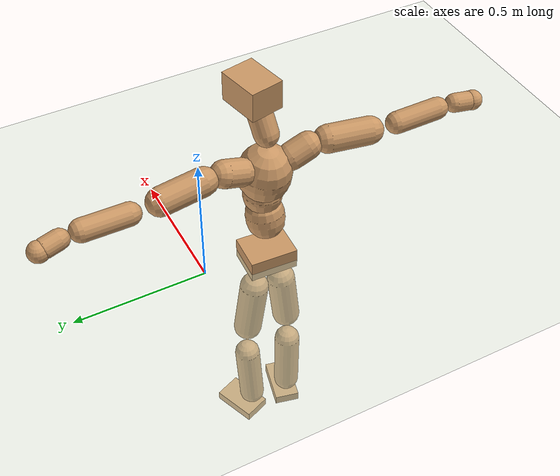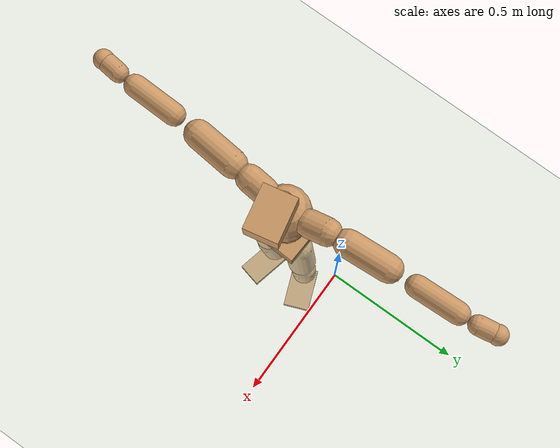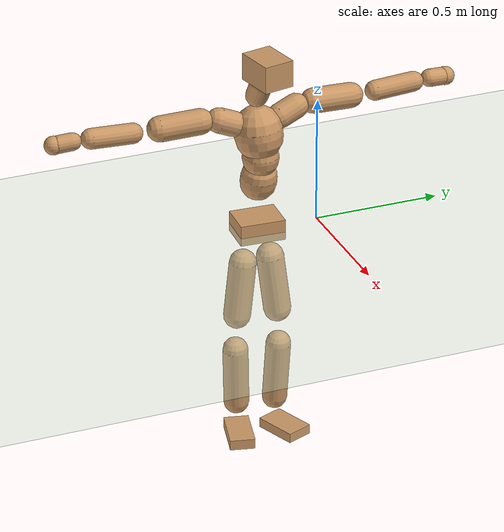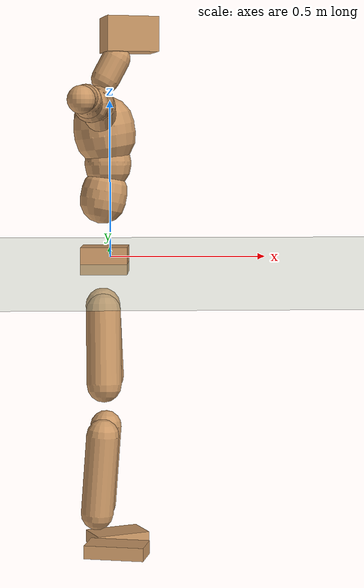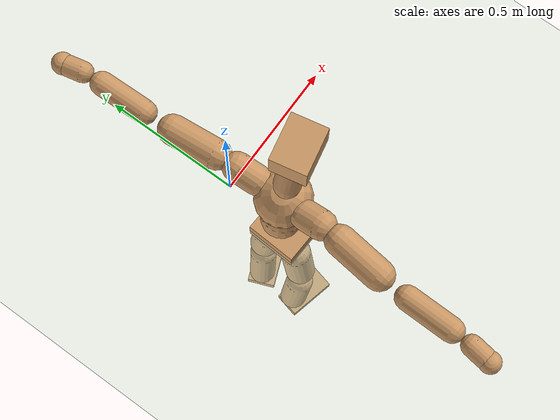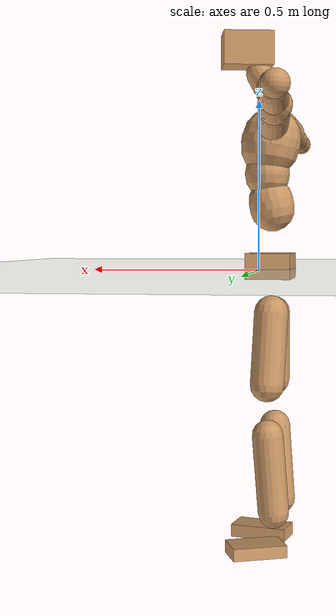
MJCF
<mujoco model="humanoid">
  <compiler coordinate="local" angle="radian"/>
  <default>
    <joint damping="0.0" armature="0.01" stiffness="0.0" limited="true"/>
    <geom conaffinity="1" condim="3" contype="7" margin="0.001" rgba="0.8 0.6 .4 1"/>
  </default>
  <asset>
    <texture type="skybox" builtin="gradient" rgb1=".4 .5 .6" rgb2="0 0 0" width="100" height="100"/>
    <texture builtin="flat" height="1278" mark="cross" markrgb="1 1 1" name="texgeom" random="0.01" rgb1="0.8 0.6 0.4" rgb2="0.8 0.6 0.4" type="cube" width="127"/>
    <texture builtin="checker" height="100" name="texplane" rgb1="0 0 0" rgb2="0.8 0.8 0.8" type="2d" width="100"/>
    <material name="MatPlane" reflectance="0.5" shininess="1" specular="1" texrepeat="60 60" texture="texplane"/>
    <material name="geom" texture="texgeom" texuniform="true"/>
  </asset>
  <worldbody>
    <light cutoff="100" diffuse="1 1 1" dir="-0 0 -1.3" directional="true" exponent="1" pos="0 0 1.3" specular=".1 .1 .1"/>
    <geom conaffinity="1" condim="3" name="floor" pos="0 0 0" rgba="0.8 0.9 0.8 1" size="100 100 .2" type="plane" material="MatPlane"/>
    <body name="Pelvis" pos="-0.0068 -0.2385 0.0152">
      <freejoint name="Pelvis"/>
      <geom type="box" contype="1" conaffinity="1" density="500" pos="-0.0111 0.0006 -0.0082" size="0.0707 0.0895 0.0411" quat="0.9997 0.0000 0.0000 -0.0257" name="Pelvis"/>
      <body name="L_Hip" pos="-0.0214 0.0473 -0.0782">
        <joint name="L_Hip_x" type="hinge" pos="0 0 0" axis="1 0 0" stiffness="800" damping="80" armature="0.02" range="-180.0000 180.0000"/>
        <joint name="L_Hip_y" type="hinge" pos="0 0 0" axis="0 1 0" stiffness="800" damping="80" armature="0.02" range="-180.0000 180.0000"/>
        <joint name="L_Hip_z" type="hinge" pos="0 0 0" axis="0 0 1" stiffness="800" damping="80" armature="0.02" range="-180.0000 180.0000"/>
        <geom type="capsule" contype="1" conaffinity="1" density="500" fromto="0.0035 0.0088 -0.0759 0.0139 0.0352 -0.3035" size="0.054" name="L_Hip"/>
        <body name="L_Knee" pos="0.0173 0.044 -0.3794">
          <joint name="L_Knee_x" type="hinge" pos="0 0 0" axis="1 0 0" stiffness="800" damping="80" armature="0.02" range="-180.0000 180.0000"/>
          <joint name="L_Knee_y" type="hinge" pos="0 0 0" axis="0 1 0" stiffness="800" damping="80" armature="0.02" range="-180.0000 180.0000"/>
          <joint name="L_Knee_z" type="hinge" pos="0 0 0" axis="0 0 1" stiffness="800" damping="80" armature="0.02" range="-180.0000 180.0000"/>
          <geom type="capsule" contype="1" conaffinity="1" density="500" fromto="-0.0062 -0.0026 -0.0826 -0.0249 -0.0102 -0.3304" size="0.0492" name="L_Knee"/>
          <body name="L_Ankle" pos="-0.0311 -0.0128 -0.4129">
            <joint name="L_Ankle_x" type="hinge" pos="0 0 0" axis="1 0 0" stiffness="800" damping="80" armature="0.02" range="-180.0000 180.0000"/>
            <joint name="L_Ankle_y" type="hinge" pos="0 0 0" axis="0 1 0" stiffness="800" damping="80" armature="0.02" range="-180.0000 180.0000"/>
            <joint name="L_Ankle_z" type="hinge" pos="0 0 0" axis="0 0 1" stiffness="800" damping="80" armature="0.02" range="-180.0000 180.0000"/>
            <geom type="box" contype="1" conaffinity="1" density="500" pos="0.0600 0.0236 -0.0302" size="0.0866 0.0537 0.0196" quat="0.9825 0.0000 0.0000 0.1864" name="L_Ankle"/>
            <body name="L_Toe" pos="0.1201 0.0473 -0.0605">
              <joint name="L_Toe_x" type="hinge" pos="0 0 0" axis="1 0 0" stiffness="500" damping="50" armature="0.02" range="-180.0000 180.0000"/>
              <joint name="L_Toe_y" type="hinge" pos="0 0 0" axis="0 1 0" stiffness="500" damping="50" armature="0.02" range="-180.0000 180.0000"/>
              <joint name="L_Toe_z" type="hinge" pos="0 0 0" axis="0 0 1" stiffness="500" damping="50" armature="0.02" range="-180.0000 180.0000"/>
              <geom type="box" contype="1" conaffinity="1" density="500" pos="0.0000 0.0000 0.0316" size="0.0011 0.0026 0.001" quat="0.9817 0.0000 0.0000 0.1906" name="L_Toe"/>
            </body>
          </body>
        </body>
      </body>
      <body name="R_Hip" pos="-0.0176 -0.0481 -0.0868">
        <joint name="R_Hip_x" type="hinge" pos="0 0 0" axis="1 0 0" stiffness="800" damping="80" armature="0.02" range="-180.0000 180.0000"/>
        <joint name="R_Hip_y" type="hinge" pos="0 0 0" axis="0 1 0" stiffness="800" damping="80" armature="0.02" range="-180.0000 180.0000"/>
        <joint name="R_Hip_z" type="hinge" pos="0 0 0" axis="0 0 1" stiffness="800" damping="80" armature="0.02" range="-180.0000 180.0000"/>
        <geom type="capsule" contype="1" conaffinity="1" density="500" fromto="0.0005 -0.0085 -0.0743 0.0022 -0.0338 -0.2972" size="0.0532" name="R_Hip"/>
        <body name="R_Knee" pos="0.0027 -0.0423 -0.3715">
          <joint name="R_Knee_x" type="hinge" pos="0 0 0" axis="1 0 0" stiffness="800" damping="80" armature="0.02" range="-180.0000 180.0000"/>
          <joint name="R_Knee_y" type="hinge" pos="0 0 0" axis="0 1 0" stiffness="800" damping="80" armature="0.02" range="-180.0000 180.0000"/>
          <joint name="R_Knee_z" type="hinge" pos="0 0 0" axis="0 0 1" stiffness="800" damping="80" armature="0.02" range="-180.0000 180.0000"/>
          <geom type="capsule" contype="1" conaffinity="1" density="500" fromto="-0.0059 0.0035 -0.0808 -0.0235 0.0141 -0.3233" size="0.05" name="R_Knee"/>
          <body name="R_Ankle" pos="-0.0294 0.0177 -0.4042">
            <joint name="R_Ankle_x" type="hinge" pos="0 0 0" axis="1 0 0" stiffness="800" damping="80" armature="0.02" range="-180.0000 180.0000"/>
            <joint name="R_Ankle_y" type="hinge" pos="0 0 0" axis="0 1 0" stiffness="800" damping="80" armature="0.02" range="-180.0000 180.0000"/>
            <joint name="R_Ankle_z" type="hinge" pos="0 0 0" axis="0 0 1" stiffness="800" damping="80" armature="0.02" range="-180.0000 180.0000"/>
            <geom type="box" contype="1" conaffinity="1" density="500" pos="0.0654 -0.0154 -0.0302" size="0.0921 0.0494 0.0205" quat="0.9933 0.0000 0.0000 -0.1155" name="R_Ankle"/>
            <body name="R_Toe" pos="0.1307 -0.0308 -0.0604">
              <joint name="R_Toe_x" type="hinge" pos="0 0 0" axis="1 0 0" stiffness="500" damping="50" armature="0.02" range="-180.0000 180.0000"/>
              <joint name="R_Toe_y" type="hinge" pos="0 0 0" axis="0 1 0" stiffness="500" damping="50" armature="0.02" range="-180.0000 180.0000"/>
              <joint name="R_Toe_z" type="hinge" pos="0 0 0" axis="0 0 1" stiffness="500" damping="50" armature="0.02" range="-180.0000 180.0000"/>
              <geom type="box" contype="1" conaffinity="1" density="500" pos="0.0000 0.0000 0.0324" size="0.0009 0.0024 0.0011" quat="0.9943 0.0000 0.0000 -0.1067" name="R_Toe"/>
            </body>
          </body>
        </body>
      </body>
      <body name="Torso" pos="-0.0279 0.0043 0.1161">
        <joint name="Torso_x" type="hinge" pos="0 0 0" axis="1 0 0" stiffness="1000" damping="100" armature="0.02" range="-180.0000 180.0000"/>
        <joint name="Torso_y" type="hinge" pos="0 0 0" axis="0 1 0" stiffness="1000" damping="100" armature="0.02" range="-180.0000 180.0000"/>
        <joint name="Torso_z" type="hinge" pos="0 0 0" axis="0 0 1" stiffness="1000" damping="100" armature="0.02" range="-180.0000 180.0000"/>
        <geom type="capsule" contype="1" conaffinity="1" density="500" fromto="0.0163 0.0036 0.0845 0.0109 0.0024 0.0563" size="0.0705" name="Torso"/>
        <body name="Spine" pos="0.0272 0.0061 0.1408">
          <joint name="Spine_x" type="hinge" pos="0 0 0" axis="1 0 0" stiffness="1000" damping="100" armature="0.02" range="-180.0000 180.0000"/>
          <joint name="Spine_y" type="hinge" pos="0 0 0" axis="0 1 0" stiffness="1000" damping="100" armature="0.02" range="-180.0000 180.0000"/>
          <joint name="Spine_z" type="hinge" pos="0 0 0" axis="0 0 1" stiffness="1000" damping="100" armature="0.02" range="-180.0000 180.0000"/>
          <geom type="capsule" contype="1" conaffinity="1" density="500" fromto="-0.0001 -0.0004 0.0344 -0.0000 -0.0003 0.0229" size="0.0709" name="Spine"/>
          <body name="Chest" pos="-0.0001 -0.0007 0.0573">
            <joint name="Chest_x" type="hinge" pos="0 0 0" axis="1 0 0" stiffness="1000" damping="100" armature="0.02" range="-180.0000 180.0000"/>
            <joint name="Chest_y" type="hinge" pos="0 0 0" axis="0 1 0" stiffness="1000" damping="100" armature="0.02" range="-180.0000 180.0000"/>
            <joint name="Chest_z" type="hinge" pos="0 0 0" axis="0 0 1" stiffness="1000" damping="100" armature="0.02" range="-180.0000 180.0000"/>
            <geom type="capsule" contype="1" conaffinity="1" density="500" fromto="-0.0123 -0.0049 0.0844 -0.0082 -0.0033 0.0563" size="0.0938" name="Chest"/>
            <body name="Neck" pos="-0.0179 -0.0141 0.2065">
              <joint name="Neck_x" type="hinge" pos="0 0 0" axis="1 0 0" stiffness="500" damping="50" armature="0.02" range="-180.0000 180.0000"/>
              <joint name="Neck_y" type="hinge" pos="0 0 0" axis="0 1 0" stiffness="500" damping="50" armature="0.02" range="-180.0000 180.0000"/>
              <joint name="Neck_z" type="hinge" pos="0 0 0" axis="0 0 1" stiffness="500" damping="50" armature="0.02" range="-180.0000 180.0000"/>
              <geom type="capsule" contype="1" conaffinity="1" density="500" fromto="0.0110 0.0019 0.0204 0.0438 0.0077 0.0817" size="0.0435" name="Neck"/>
              <body name="Head" pos="0.0548 0.0096 0.1021">
                <joint name="Head_x" type="hinge" pos="0 0 0" axis="1 0 0" stiffness="500" damping="50" armature="0.02" range="-180.0000 180.0000"/>
                <joint name="Head_y" type="hinge" pos="0 0 0" axis="0 1 0" stiffness="500" damping="50" armature="0.02" range="-180.0000 180.0000"/>
                <joint name="Head_z" type="hinge" pos="0 0 0" axis="0 0 1" stiffness="500" damping="50" armature="0.02" range="-180.0000 180.0000"/>
                <geom type="box" contype="1" conaffinity="1" density="500" pos="0.0284 0.0058 0.0521" size="0.0788 0.0606 0.0528" quat="0.9949 0.0000 0.0000 0.1008" name="Head"/>
              </body>
            </body>
            <body name="L_Thorax" pos="-0.0196 0.0641 0.1088">
              <joint name="L_Thorax_x" type="hinge" pos="0 0 0" axis="1 0 0" stiffness="500" damping="50" armature="0.02" range="-180.0000 180.0000"/>
              <joint name="L_Thorax_y" type="hinge" pos="0 0 0" axis="0 1 0" stiffness="500" damping="50" armature="0.02" range="-180.0000 180.0000"/>
              <joint name="L_Thorax_z" type="hinge" pos="0 0 0" axis="0 0 1" stiffness="500" damping="50" armature="0.02" range="-180.0000 180.0000"/>
              <geom type="capsule" contype="1" conaffinity="1" density="500" fromto="-0.0029 0.0229 0.0087 -0.0115 0.0917 0.0346" size="0.0491" name="L_Thorax"/>
              <body name="L_Shoulder" pos="-0.0144 0.1146 0.0433">
                <joint name="L_Shoulder_x" type="hinge" pos="0 0 0" axis="1 0 0" stiffness="500" damping="50" armature="0.02" range="-720.0000 720.0000"/>
                <joint name="L_Shoulder_y" type="hinge" pos="0 0 0" axis="0 1 0" stiffness="500" damping="50" armature="0.02" range="-720.0000 720.0000"/>
                <joint name="L_Shoulder_z" type="hinge" pos="0 0 0" axis="0 0 1" stiffness="500" damping="50" armature="0.02" range="-720.0000 720.0000"/>
                <geom type="capsule" contype="1" conaffinity="1" density="500" fromto="-0.0040 0.0522 -0.0034 -0.0162 0.2089 -0.0138" size="0.0497" name="L_Shoulder"/>
                <body name="L_Elbow" pos="-0.0202 0.2612 -0.0172">
                  <joint name="L_Elbow_x" type="hinge" pos="0 0 0" axis="1 0 0" stiffness="500" damping="50" armature="0.02" range="-720.0000 720.0000"/>
                  <joint name="L_Elbow_y" type="hinge" pos="0 0 0" axis="0 1 0" stiffness="500" damping="50" armature="0.02" range="-720.0000 720.0000"/>
                  <joint name="L_Elbow_z" type="hinge" pos="0 0 0" axis="0 0 1" stiffness="500" damping="50" armature="0.02" range="-720.0000 720.0000"/>
                  <geom type="capsule" contype="1" conaffinity="1" density="500" fromto="-0.0018 0.0536 0.0023 -0.0073 0.2145 0.0092" size="0.0398" name="L_Elbow"/>
                  <body name="L_Wrist" pos="-0.0092 0.2681 0.0115">
                    <joint name="L_Wrist_x" type="hinge" pos="0 0 0" axis="1 0 0" stiffness="300" damping="30" armature="0.02" range="-180.0000 180.0000"/>
                    <joint name="L_Wrist_y" type="hinge" pos="0 0 0" axis="0 1 0" stiffness="300" damping="30" armature="0.02" range="-180.0000 180.0000"/>
                    <joint name="L_Wrist_z" type="hinge" pos="0 0 0" axis="0 0 1" stiffness="300" damping="30" armature="0.02" range="-180.0000 180.0000"/>
                    <geom type="capsule" contype="1" conaffinity="1" density="500" fromto="-0.0033 0.0179 -0.0022 -0.0131 0.0717 -0.0086" size="0.0348" name="L_Wrist"/>
                    <body name="L_Hand" pos="-0.0163 0.0897 -0.0108">
                      <joint name="L_Hand_x" type="hinge" pos="0 0 0" axis="1 0 0" stiffness="300" damping="30" armature="0.02" range="-180.0000 180.0000"/>
                      <joint name="L_Hand_y" type="hinge" pos="0 0 0" axis="0 1 0" stiffness="300" damping="30" armature="0.02" range="-180.0000 180.0000"/>
                      <joint name="L_Hand_z" type="hinge" pos="0 0 0" axis="0 0 1" stiffness="300" damping="30" armature="0.02" range="-180.0000 180.0000"/>
                      <geom type="sphere" contype="1" conaffinity="1" density="500" size="0.0367" pos="0.0000 0.0000 0.0000" name="L_Hand"/>
                    </body>
                  </body>
                </body>
              </body>
            </body>
            <body name="R_Thorax" pos="-0.0237 -0.0746 0.1066">
              <joint name="R_Thorax_x" type="hinge" pos="0 0 0" axis="1 0 0" stiffness="500" damping="50" armature="0.02" range="-180.0000 180.0000"/>
              <joint name="R_Thorax_y" type="hinge" pos="0 0 0" axis="0 1 0" stiffness="500" damping="50" armature="0.02" range="-180.0000 180.0000"/>
              <joint name="R_Thorax_z" type="hinge" pos="0 0 0" axis="0 0 1" stiffness="500" damping="50" armature="0.02" range="-180.0000 180.0000"/>
              <geom type="capsule" contype="1" conaffinity="1" density="500" fromto="-0.0009 -0.0206 0.0085 -0.0036 -0.0825 0.0341" size="0.049" name="R_Thorax"/>
              <body name="R_Shoulder" pos="-0.0045 -0.1032 0.0426">
                <joint name="R_Shoulder_x" type="hinge" pos="0 0 0" axis="1 0 0" stiffness="500" damping="50" armature="0.02" range="-720.0000 720.0000"/>
                <joint name="R_Shoulder_y" type="hinge" pos="0 0 0" axis="0 1 0" stiffness="500" damping="50" armature="0.02" range="-720.0000 720.0000"/>
                <joint name="R_Shoulder_z" type="hinge" pos="0 0 0" axis="0 0 1" stiffness="500" damping="50" armature="0.02" range="-720.0000 720.0000"/>
                <geom type="capsule" contype="1" conaffinity="1" density="500" fromto="-0.0055 -0.0517 -0.0033 -0.0218 -0.2069 -0.0134" size="0.0502" name="R_Shoulder"/>
                <body name="R_Elbow" pos="-0.0273 -0.2586 -0.0167">
                  <joint name="R_Elbow_x" type="hinge" pos="0 0 0" axis="1 0 0" stiffness="500" damping="50" armature="0.02" range="-720.0000 720.0000"/>
                  <joint name="R_Elbow_y" type="hinge" pos="0 0 0" axis="0 1 0" stiffness="500" damping="50" armature="0.02" range="-720.0000 720.0000"/>
                  <joint name="R_Elbow_z" type="hinge" pos="0 0 0" axis="0 0 1" stiffness="500" damping="50" armature="0.02" range="-720.0000 720.0000"/>
                  <geom type="capsule" contype="1" conaffinity="1" density="500" fromto="-0.0011 -0.0541 0.0019 -0.0044 -0.2165 0.0076" size="0.04" name="R_Elbow"/>
                  <body name="R_Wrist" pos="-0.0055 -0.2707 0.0095">
                    <joint name="R_Wrist_x" type="hinge" pos="0 0 0" axis="1 0 0" stiffness="300" damping="30" armature="0.02" range="-180.0000 180.0000"/>
                    <joint name="R_Wrist_y" type="hinge" pos="0 0 0" axis="0 1 0" stiffness="300" damping="30" armature="0.02" range="-180.0000 180.0000"/>
                    <joint name="R_Wrist_z" type="hinge" pos="0 0 0" axis="0 0 1" stiffness="300" damping="30" armature="0.02" range="-180.0000 180.0000"/>
                    <geom type="capsule" contype="1" conaffinity="1" density="500" fromto="-0.0021 -0.0178 -0.0017 -0.0085 -0.0712 -0.0069" size="0.0344" name="R_Wrist"/>
                    <body name="R_Hand" pos="-0.0106 -0.089 -0.0086">
                      <joint name="R_Hand_x" type="hinge" pos="0 0 0" axis="1 0 0" stiffness="300" damping="30" armature="0.02" range="-180.0000 180.0000"/>
                      <joint name="R_Hand_y" type="hinge" pos="0 0 0" axis="0 1 0" stiffness="300" damping="30" armature="0.02" range="-180.0000 180.0000"/>
                      <joint name="R_Hand_z" type="hinge" pos="0 0 0" axis="0 0 1" stiffness="300" damping="30" armature="0.02" range="-180.0000 180.0000"/>
                      <geom type="sphere" contype="1" conaffinity="1" density="500" size="0.0361" pos="0.0000 0.0000 0.0000" name="R_Hand"/>
                    </body>
                  </body>
                </body>
              </body>
            </body>
          </body>
        </body>
      </body>
    </body>
  </worldbody>
  <actuator>
    <motor name="L_Hip_x" joint="L_Hip_x" gear="500"/>
    <motor name="L_Hip_y" joint="L_Hip_y" gear="500"/>
    <motor name="L_Hip_z" joint="L_Hip_z" gear="500"/>
    <motor name="L_Knee_x" joint="L_Knee_x" gear="500"/>
    <motor name="L_Knee_y" joint="L_Knee_y" gear="500"/>
    <motor name="L_Knee_z" joint="L_Knee_z" gear="500"/>
    <motor name="L_Ankle_x" joint="L_Ankle_x" gear="500"/>
    <motor name="L_Ankle_y" joint="L_Ankle_y" gear="500"/>
    <motor name="L_Ankle_z" joint="L_Ankle_z" gear="500"/>
    <motor name="L_Toe_x" joint="L_Toe_x" gear="500"/>
    <motor name="L_Toe_y" joint="L_Toe_y" gear="500"/>
    <motor name="L_Toe_z" joint="L_Toe_z" gear="500"/>
    <motor name="R_Hip_x" joint="R_Hip_x" gear="500"/>
    <motor name="R_Hip_y" joint="R_Hip_y" gear="500"/>
    <motor name="R_Hip_z" joint="R_Hip_z" gear="500"/>
    <motor name="R_Knee_x" joint="R_Knee_x" gear="500"/>
    <motor name="R_Knee_y" joint="R_Knee_y" gear="500"/>
    <motor name="R_Knee_z" joint="R_Knee_z" gear="500"/>
    <motor name="R_Ankle_x" joint="R_Ankle_x" gear="500"/>
    <motor name="R_Ankle_y" joint="R_Ankle_y" gear="500"/>
    <motor name="R_Ankle_z" joint="R_Ankle_z" gear="500"/>
    <motor name="R_Toe_x" joint="R_Toe_x" gear="500"/>
    <motor name="R_Toe_y" joint="R_Toe_y" gear="500"/>
    <motor name="R_Toe_z" joint="R_Toe_z" gear="500"/>
    <motor name="Torso_x" joint="Torso_x" gear="500"/>
    <motor name="Torso_y" joint="Torso_y" gear="500"/>
    <motor name="Torso_z" joint="Torso_z" gear="500"/>
    <motor name="Spine_x" joint="Spine_x" gear="500"/>
    <motor name="Spine_y" joint="Spine_y" gear="500"/>
    <motor name="Spine_z" joint="Spine_z" gear="500"/>
    <motor name="Chest_x" joint="Chest_x" gear="500"/>
    <motor name="Chest_y" joint="Chest_y" gear="500"/>
    <motor name="Chest_z" joint="Chest_z" gear="500"/>
    <motor name="Neck_x" joint="Neck_x" gear="500"/>
    <motor name="Neck_y" joint="Neck_y" gear="500"/>
    <motor name="Neck_z" joint="Neck_z" gear="500"/>
    <motor name="Head_x" joint="Head_x" gear="500"/>
    <motor name="Head_y" joint="Head_y" gear="500"/>
    <motor name="Head_z" joint="Head_z" gear="500"/>
    <motor name="L_Thorax_x" joint="L_Thorax_x" gear="500"/>
    <motor name="L_Thorax_y" joint="L_Thorax_y" gear="500"/>
    <motor name="L_Thorax_z" joint="L_Thorax_z" gear="500"/>
    <motor name="L_Shoulder_x" joint="L_Shoulder_x" gear="500"/>
    <motor name="L_Shoulder_y" joint="L_Shoulder_y" gear="500"/>
    <motor name="L_Shoulder_z" joint="L_Shoulder_z" gear="500"/>
    <motor name="L_Elbow_x" joint="L_Elbow_x" gear="500"/>
    <motor name="L_Elbow_y" joint="L_Elbow_y" gear="500"/>
    <motor name="L_Elbow_z" joint="L_Elbow_z" gear="500"/>
    <motor name="L_Wrist_x" joint="L_Wrist_x" gear="500"/>
    <motor name="L_Wrist_y" joint="L_Wrist_y" gear="500"/>
    <motor name="L_Wrist_z" joint="L_Wrist_z" gear="500"/>
    <motor name="L_Hand_x" joint="L_Hand_x" gear="500"/>
    <motor name="L_Hand_y" joint="L_Hand_y" gear="500"/>
    <motor name="L_Hand_z" joint="L_Hand_z" gear="500"/>
    <motor name="R_Thorax_x" joint="R_Thorax_x" gear="500"/>
    <motor name="R_Thorax_y" joint="R_Thorax_y" gear="500"/>
    <motor name="R_Thorax_z" joint="R_Thorax_z" gear="500"/>
    <motor name="R_Shoulder_x" joint="R_Shoulder_x" gear="500"/>
    <motor name="R_Shoulder_y" joint="R_Shoulder_y" gear="500"/>
    <motor name="R_Shoulder_z" joint="R_Shoulder_z" gear="500"/>
    <motor name="R_Elbow_x" joint="R_Elbow_x" gear="500"/>
    <motor name="R_Elbow_y" joint="R_Elbow_y" gear="500"/>
    <motor name="R_Elbow_z" joint="R_Elbow_z" gear="500"/>
    <motor name="R_Wrist_x" joint="R_Wrist_x" gear="500"/>
    <motor name="R_Wrist_y" joint="R_Wrist_y" gear="500"/>
    <motor name="R_Wrist_z" joint="R_Wrist_z" gear="500"/>
    <motor name="R_Hand_x" joint="R_Hand_x" gear="500"/>
    <motor name="R_Hand_y" joint="R_Hand_y" gear="500"/>
    <motor name="R_Hand_z" joint="R_Hand_z" gear="500"/>
  </actuator>
  <contact>
    <exclude body1="Torso" body2="Chest"/>
    <exclude body1="Head" body2="Chest"/>
    <exclude body1="R_Knee" body2="R_Toe"/>
    <exclude body1="R_Knee" body2="L_Ankle"/>
    <exclude body1="R_Knee" body2="L_Toe"/>
    <exclude body1="L_Knee" body2="L_Toe"/>
    <exclude body1="L_Knee" body2="R_Ankle"/>
    <exclude body1="L_Knee" body2="R_Toe"/>
    <exclude body1="L_Shoulder" body2="Chest"/>
    <exclude body1="R_Shoulder" body2="Chest"/>
  </contact>
  <sensor/>
  <size njmax="700" nconmax="700"/>
</mujoco>
